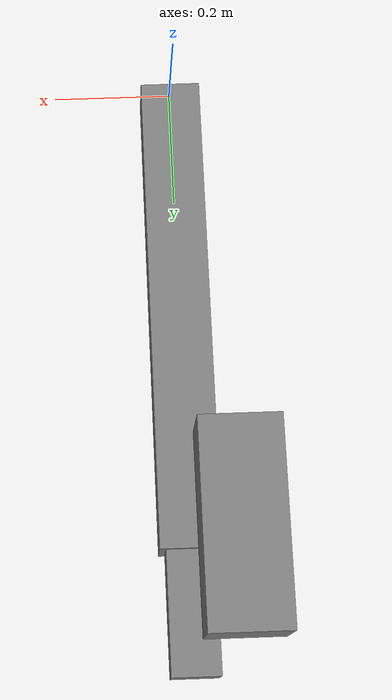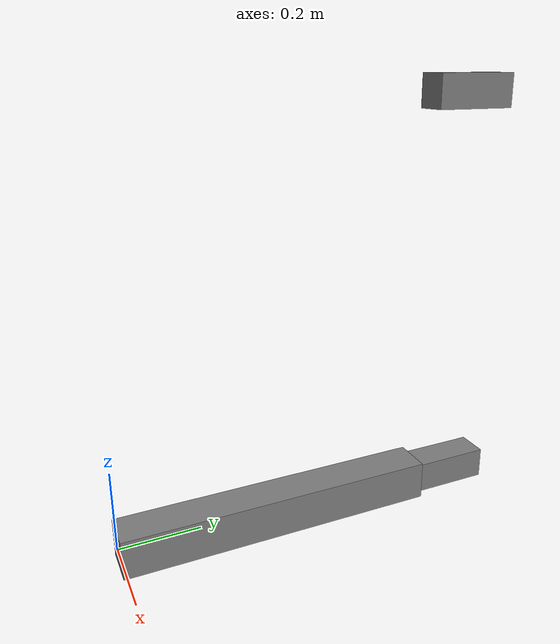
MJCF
<mujoco model="meshes">
    <compiler meshdir="assets"/>

    <asset>
        <mesh name="StlBox" file="box.stl" scale="0.1 0.8 0.1"/>
        <mesh name="ObjBox" file="box.obj" scale="0.08 0.2 0.08"/>
        <mesh file="box.obj" scale="0.08 0.2 0.08"/>
    </asset>

    <worldbody>
        <body name="body1">
            <geom type="mesh" mesh="StlBox" pos="0 0.4 0"/>
            <body name="body2">
                <joint type="hinge" axis="0 1 0"/>
                <geom type="mesh" mesh="ObjBox" pos="0 0.9 0"/>
                <geom type="mesh" mesh="box" pos="0 0.9 1"/>
            </body>
        </body>
    </worldbody>
</mujoco>
